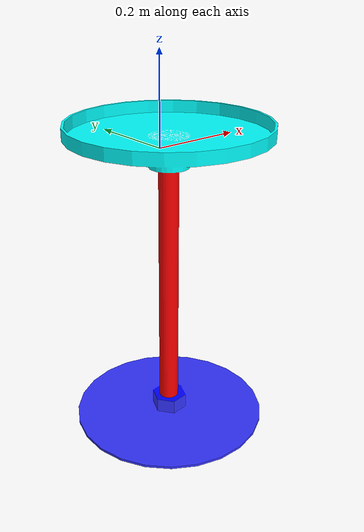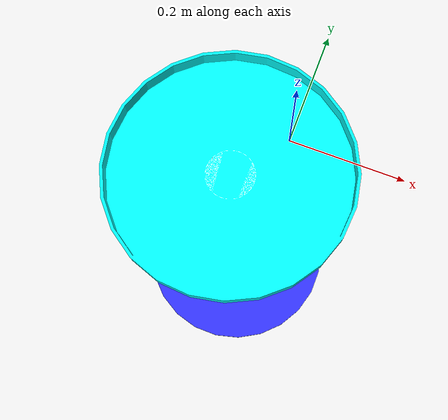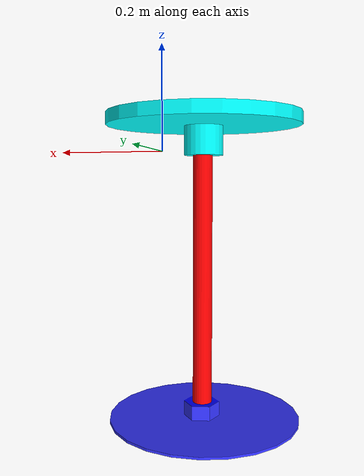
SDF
<?xml version="1.0" ?>
<sdf version="1.5">
  <model name="Candy Plate">
    <static>0</static>
    <link name="candy_plate_link">
      <inertial>
        <pose>0.0 0.0 0.0 0.0 0.0 0.0</pose>
        <mass> 3.0 </mass>
        <inertia>
          <ixx> 0.0</ixx>
          <ixy> 0.0 </ixy>
          <ixz> 0.0 </ixz>
          <iyy> 0.0 </iyy>
          <iyz> 0.0 </iyz>
          <izz> 0.0 </izz>
        </inertia>
      </inertial>
      <collision name="collision">
        <geometry>
          <mesh>
            <uri>model://candy_Plate/meshes/candy_Plate.dae</uri>
          </mesh>
        </geometry>
      </collision>
      <visual name="visual">
        <geometry>
          <mesh>
            <uri>model://candy_Plate/meshes/candy_Plate.dae</uri>
          </mesh>
        </geometry>
      </visual>
    </link>
  </model>
</sdf>
